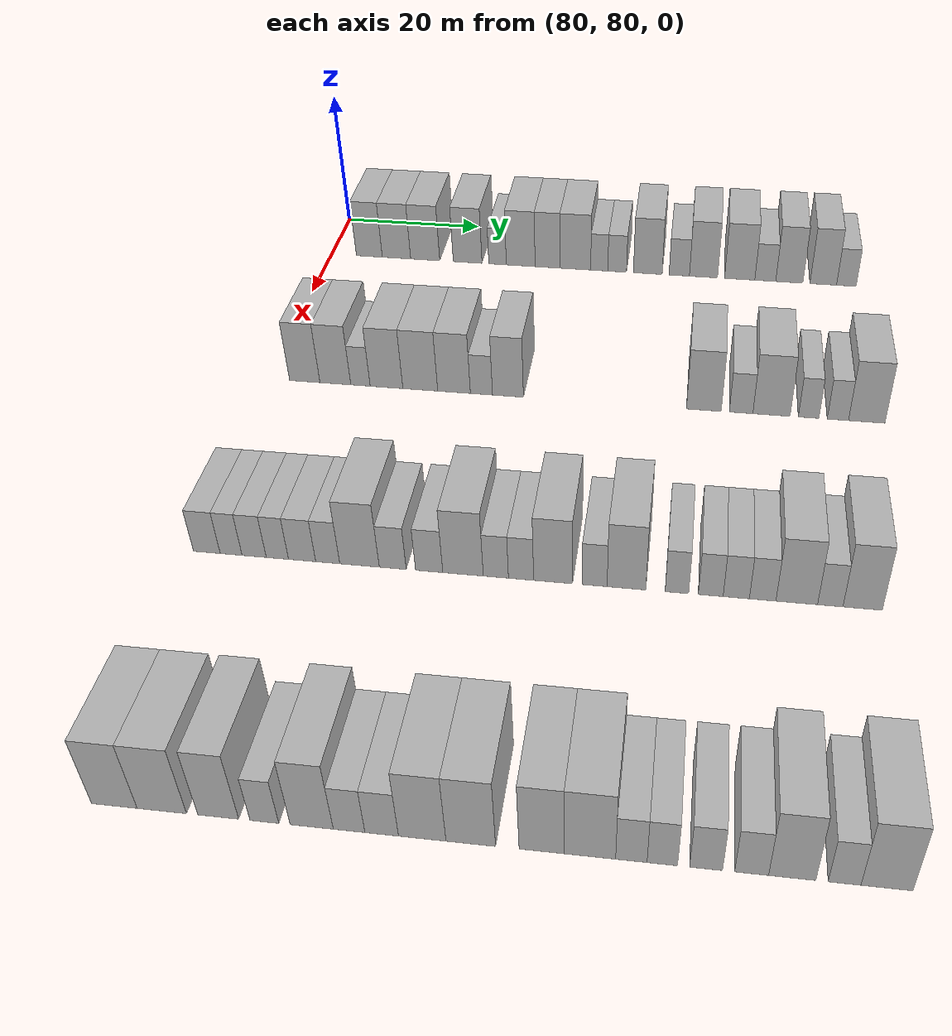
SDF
<sdf version="1.6">
 <world name="default">
  <model name="building_607">
   <static>1</static>
   <pose>85.0000 85.5541 0 0.000000 0.000000 0.000000</pose>
   <link name="link">
    <pose>0 0 4.50 0 0 0</pose>
    <collision name="collision"><geometry><box><size>10.0000 3.8704 9.0000</size></box></geometry></collision>
    <visual name="visual">
     <cast_shadows>0</cast_shadows>
     <geometry><box><size>10.0000 3.8704 9.0000</size></box></geometry>
     <material>
      <script>
       <uri>model://HANNAS_wall/materials/scripts</uri>
       <uri>model://HANNAS_wall/materials/textures</uri>
       <name>vrc/HANNAS_wall</name>
      </script>
     </material>
    </visual>
   </link>
  </model>
  <model name="building_608">
   <static>1</static>
   <pose>85.0000 89.6029 0 0.000000 0.000000 0.000000</pose>
   <link name="link">
    <pose>0 0 4.50 0 0 0</pose>
    <collision name="collision"><geometry><box><size>10.0000 4.2272 9.0000</size></box></geometry></collision>
    <visual name="visual">
     <cast_shadows>0</cast_shadows>
     <geometry><box><size>10.0000 4.2272 9.0000</size></box></geometry>
     <material>
      <script>
       <uri>model://HANNAS_wall/materials/scripts</uri>
       <uri>model://HANNAS_wall/materials/textures</uri>
       <name>vrc/HANNAS_wall</name>
      </script>
     </material>
    </visual>
   </link>
  </model>
  <model name="building_609">
   <static>1</static>
   <pose>85.0000 93.8718 0 0.000000 0.000000 0.000000</pose>
   <link name="link">
    <pose>0 0 4.50 0 0 0</pose>
    <collision name="collision"><geometry><box><size>10.0000 4.3107 9.0000</size></box></geometry></collision>
    <visual name="visual">
     <cast_shadows>0</cast_shadows>
     <geometry><box><size>10.0000 4.3107 9.0000</size></box></geometry>
     <material>
      <script>
       <uri>model://HANNAS_wall/materials/scripts</uri>
       <uri>model://HANNAS_wall/materials/textures</uri>
       <name>vrc/HANNAS_wall</name>
      </script>
     </material>
    </visual>
   </link>
  </model>
  <model name="building_610">
   <static>1</static>
   <pose>85.0000 100.1409 0 0.000000 0.000000 0.000000</pose>
   <link name="link">
    <pose>0 0 4.50 0 0 0</pose>
    <collision name="collision"><geometry><box><size>10.0000 4.2274 9.0000</size></box></geometry></collision>
    <visual name="visual">
     <cast_shadows>0</cast_shadows>
     <geometry><box><size>10.0000 4.2274 9.0000</size></box></geometry>
     <material>
      <script>
       <uri>model://HANNAS_wall/materials/scripts</uri>
       <uri>model://HANNAS_wall/materials/textures</uri>
       <name>vrc/HANNAS_wall</name>
      </script>
     </material>
    </visual>
   </link>
  </model>
  <model name="building_611">
   <static>1</static>
   <pose>85.0000 104.5401 0 0.000000 0.000000 0.000000</pose>
   <link name="link">
    <pose>0 0 3.00 0 0 0</pose>
    <collision name="collision"><geometry><box><size>10.0000 2.5710 6.0000</size></box></geometry></collision>
    <visual name="visual">
     <cast_shadows>0</cast_shadows>
     <geometry><box><size>10.0000 2.5710 6.0000</size></box></geometry>
     <material>
      <script>
       <uri>model://HANNAS_wall/materials/scripts</uri>
       <uri>model://HANNAS_wall/materials/textures</uri>
       <name>vrc/HANNAS_wall</name>
      </script>
     </material>
    </visual>
   </link>
  </model>
  <model name="building_612">
   <static>1</static>
   <pose>85.0000 107.9286 0 0.000000 0.000000 0.000000</pose>
   <link name="link">
    <pose>0 0 4.50 0 0 0</pose>
    <collision name="collision"><geometry><box><size>10.0000 4.2059 9.0000</size></box></geometry></collision>
    <visual name="visual">
     <cast_shadows>0</cast_shadows>
     <geometry><box><size>10.0000 4.2059 9.0000</size></box></geometry>
     <material>
      <script>
       <uri>model://HANNAS_wall/materials/scripts</uri>
       <uri>model://HANNAS_wall/materials/textures</uri>
       <name>vrc/HANNAS_wall</name>
      </script>
     </material>
    </visual>
   </link>
  </model>
  <model name="building_613">
   <static>1</static>
   <pose>85.0000 111.8455 0 0.000000 0.000000 0.000000</pose>
   <link name="link">
    <pose>0 0 4.50 0 0 0</pose>
    <collision name="collision"><geometry><box><size>10.0000 3.6279 9.0000</size></box></geometry></collision>
    <visual name="visual">
     <cast_shadows>0</cast_shadows>
     <geometry><box><size>10.0000 3.6279 9.0000</size></box></geometry>
     <material>
      <script>
       <uri>model://HANNAS_wall/materials/scripts</uri>
       <uri>model://HANNAS_wall/materials/textures</uri>
       <name>vrc/HANNAS_wall</name>
      </script>
     </material>
    </visual>
   </link>
  </model>
  <model name="building_614">
   <static>1</static>
   <pose>85.0000 115.8814 0 0.000000 0.000000 0.000000</pose>
   <link name="link">
    <pose>0 0 4.50 0 0 0</pose>
    <collision name="collision"><geometry><box><size>10.0000 4.4439 9.0000</size></box></geometry></collision>
    <visual name="visual">
     <cast_shadows>0</cast_shadows>
     <geometry><box><size>10.0000 4.4439 9.0000</size></box></geometry>
     <material>
      <script>
       <uri>model://HANNAS_wall/materials/scripts</uri>
       <uri>model://HANNAS_wall/materials/textures</uri>
       <name>vrc/HANNAS_wall</name>
      </script>
     </material>
    </visual>
   </link>
  </model>
  <model name="building_615">
   <static>1</static>
   <pose>85.0000 119.3385 0 0.000000 0.000000 0.000000</pose>
   <link name="link">
    <pose>0 0 3.00 0 0 0</pose>
    <collision name="collision"><geometry><box><size>10.0000 2.4704 6.0000</size></box></geometry></collision>
    <visual name="visual">
     <cast_shadows>0</cast_shadows>
     <geometry><box><size>10.0000 2.4704 6.0000</size></box></geometry>
     <material>
      <script>
       <uri>model://HANNAS_wall/materials/scripts</uri>
       <uri>model://HANNAS_wall/materials/textures</uri>
       <name>vrc/HANNAS_wall</name>
      </script>
     </material>
    </visual>
   </link>
  </model>
  <model name="building_616">
   <static>1</static>
   <pose>85.0000 121.9145 0 0.000000 0.000000 0.000000</pose>
   <link name="link">
    <pose>0 0 3.00 0 0 0</pose>
    <collision name="collision"><geometry><box><size>10.0000 2.6816 6.0000</size></box></geometry></collision>
    <visual name="visual">
     <cast_shadows>0</cast_shadows>
     <geometry><box><size>10.0000 2.6816 6.0000</size></box></geometry>
     <material>
      <script>
       <uri>model://HANNAS_wall/materials/scripts</uri>
       <uri>model://HANNAS_wall/materials/textures</uri>
       <name>vrc/HANNAS_wall</name>
      </script>
     </material>
    </visual>
   </link>
  </model>
  <model name="building_617">
   <static>1</static>
   <pose>85.0000 126.3104 0 0.000000 0.000000 0.000000</pose>
   <link name="link">
    <pose>0 0 4.50 0 0 0</pose>
    <collision name="collision"><geometry><box><size>10.0000 4.1101 9.0000</size></box></geometry></collision>
    <visual name="visual">
     <cast_shadows>0</cast_shadows>
     <geometry><box><size>10.0000 4.1101 9.0000</size></box></geometry>
     <material>
      <script>
       <uri>model://HANNAS_wall/materials/scripts</uri>
       <uri>model://HANNAS_wall/materials/textures</uri>
       <name>vrc/HANNAS_wall</name>
      </script>
     </material>
    </visual>
   </link>
  </model>
  <model name="building_618">
   <static>1</static>
   <pose>85.0000 130.8107 0 0.000000 0.000000 0.000000</pose>
   <link name="link">
    <pose>0 0 3.00 0 0 0</pose>
    <collision name="collision"><geometry><box><size>10.0000 2.8905 6.0000</size></box></geometry></collision>
    <visual name="visual">
     <cast_shadows>0</cast_shadows>
     <geometry><box><size>10.0000 2.8905 6.0000</size></box></geometry>
     <material>
      <script>
       <uri>model://HANNAS_wall/materials/scripts</uri>
       <uri>model://HANNAS_wall/materials/textures</uri>
       <name>vrc/HANNAS_wall</name>
      </script>
     </material>
    </visual>
   </link>
  </model>
  <model name="building_619">
   <static>1</static>
   <pose>85.0000 134.2525 0 0.000000 0.000000 0.000000</pose>
   <link name="link">
    <pose>0 0 4.50 0 0 0</pose>
    <collision name="collision"><geometry><box><size>10.0000 3.9931 9.0000</size></box></geometry></collision>
    <visual name="visual">
     <cast_shadows>0</cast_shadows>
     <geometry><box><size>10.0000 3.9931 9.0000</size></box></geometry>
     <material>
      <script>
       <uri>model://HANNAS_wall/materials/scripts</uri>
       <uri>model://HANNAS_wall/materials/textures</uri>
       <name>vrc/HANNAS_wall</name>
      </script>
     </material>
    </visual>
   </link>
  </model>
  <model name="building_620">
   <static>1</static>
   <pose>85.0000 139.3869 0 0.000000 0.000000 0.000000</pose>
   <link name="link">
    <pose>0 0 4.50 0 0 0</pose>
    <collision name="collision"><geometry><box><size>10.0000 4.2758 9.0000</size></box></geometry></collision>
    <visual name="visual">
     <cast_shadows>0</cast_shadows>
     <geometry><box><size>10.0000 4.2758 9.0000</size></box></geometry>
     <material>
      <script>
       <uri>model://HANNAS_wall/materials/scripts</uri>
       <uri>model://HANNAS_wall/materials/textures</uri>
       <name>vrc/HANNAS_wall</name>
      </script>
     </material>
    </visual>
   </link>
  </model>
  <model name="building_621">
   <static>1</static>
   <pose>85.0000 142.9996 0 0.000000 0.000000 0.000000</pose>
   <link name="link">
    <pose>0 0 3.00 0 0 0</pose>
    <collision name="collision"><geometry><box><size>10.0000 2.9495 6.0000</size></box></geometry></collision>
    <visual name="visual">
     <cast_shadows>0</cast_shadows>
     <geometry><box><size>10.0000 2.9495 6.0000</size></box></geometry>
     <material>
      <script>
       <uri>model://HANNAS_wall/materials/scripts</uri>
       <uri>model://HANNAS_wall/materials/textures</uri>
       <name>vrc/HANNAS_wall</name>
      </script>
     </material>
    </visual>
   </link>
  </model>
  <model name="building_622">
   <static>1</static>
   <pose>85.0000 146.3707 0 0.000000 0.000000 0.000000</pose>
   <link name="link">
    <pose>0 0 4.50 0 0 0</pose>
    <collision name="collision"><geometry><box><size>10.0000 3.7928 9.0000</size></box></geometry></collision>
    <visual name="visual">
     <cast_shadows>0</cast_shadows>
     <geometry><box><size>10.0000 3.7928 9.0000</size></box></geometry>
     <material>
      <script>
       <uri>model://HANNAS_wall/materials/scripts</uri>
       <uri>model://HANNAS_wall/materials/textures</uri>
       <name>vrc/HANNAS_wall</name>
      </script>
     </material>
    </visual>
   </link>
  </model>
  <model name="building_623">
   <static>1</static>
   <pose>85.0000 151.1259 0 0.000000 0.000000 0.000000</pose>
   <link name="link">
    <pose>0 0 4.50 0 0 0</pose>
    <collision name="collision"><geometry><box><size>10.0000 3.7176 9.0000</size></box></geometry></collision>
    <visual name="visual">
     <cast_shadows>0</cast_shadows>
     <geometry><box><size>10.0000 3.7176 9.0000</size></box></geometry>
     <material>
      <script>
       <uri>model://HANNAS_wall/materials/scripts</uri>
       <uri>model://HANNAS_wall/materials/textures</uri>
       <name>vrc/HANNAS_wall</name>
      </script>
     </material>
    </visual>
   </link>
  </model>
  <model name="building_624">
   <static>1</static>
   <pose>85.0000 154.3446 0 0.000000 0.000000 0.000000</pose>
   <link name="link">
    <pose>0 0 3.00 0 0 0</pose>
    <collision name="collision"><geometry><box><size>10.0000 2.7198 6.0000</size></box></geometry></collision>
    <visual name="visual">
     <cast_shadows>0</cast_shadows>
     <geometry><box><size>10.0000 2.7198 6.0000</size></box></geometry>
     <material>
      <script>
       <uri>model://HANNAS_wall/materials/scripts</uri>
       <uri>model://HANNAS_wall/materials/textures</uri>
       <name>vrc/HANNAS_wall</name>
      </script>
     </material>
    </visual>
   </link>
  </model>
  <model name="building_825">
   <static>1</static>
   <pose>115.0000 84.7533 0 0.000000 0.000000 0.000000</pose>
   <link name="link">
    <pose>0 0 4.50 0 0 0</pose>
    <collision name="collision"><geometry><box><size>10.0000 3.9340 9.0000</size></box></geometry></collision>
    <visual name="visual">
     <cast_shadows>0</cast_shadows>
     <geometry><box><size>10.0000 3.9340 9.0000</size></box></geometry>
     <material>
      <script>
       <uri>model://HANNAS_wall/materials/scripts</uri>
       <uri>model://HANNAS_wall/materials/textures</uri>
       <name>vrc/HANNAS_wall</name>
      </script>
     </material>
    </visual>
   </link>
  </model>
  <model name="building_826">
   <static>1</static>
   <pose>115.0000 88.7119 0 0.000000 0.000000 0.000000</pose>
   <link name="link">
    <pose>0 0 4.50 0 0 0</pose>
    <collision name="collision"><geometry><box><size>10.0000 3.9833 9.0000</size></box></geometry></collision>
    <visual name="visual">
     <cast_shadows>0</cast_shadows>
     <geometry><box><size>10.0000 3.9833 9.0000</size></box></geometry>
     <material>
      <script>
       <uri>model://HANNAS_wall/materials/scripts</uri>
       <uri>model://HANNAS_wall/materials/textures</uri>
       <name>vrc/HANNAS_wall</name>
      </script>
     </material>
    </visual>
   </link>
  </model>
  <model name="building_827">
   <static>1</static>
   <pose>115.0000 91.9536 0 0.000000 0.000000 0.000000</pose>
   <link name="link">
    <pose>0 0 3.00 0 0 0</pose>
    <collision name="collision"><geometry><box><size>10.0000 2.5001 6.0000</size></box></geometry></collision>
    <visual name="visual">
     <cast_shadows>0</cast_shadows>
     <geometry><box><size>10.0000 2.5001 6.0000</size></box></geometry>
     <material>
      <script>
       <uri>model://HANNAS_wall/materials/scripts</uri>
       <uri>model://HANNAS_wall/materials/textures</uri>
       <name>vrc/HANNAS_wall</name>
      </script>
     </material>
    </visual>
   </link>
  </model>
  <model name="building_828">
   <static>1</static>
   <pose>115.0000 95.3007 0 0.000000 0.000000 0.000000</pose>
   <link name="link">
    <pose>0 0 4.50 0 0 0</pose>
    <collision name="collision"><geometry><box><size>10.0000 4.1941 9.0000</size></box></geometry></collision>
    <visual name="visual">
     <cast_shadows>0</cast_shadows>
     <geometry><box><size>10.0000 4.1941 9.0000</size></box></geometry>
     <material>
      <script>
       <uri>model://HANNAS_wall/materials/scripts</uri>
       <uri>model://HANNAS_wall/materials/textures</uri>
       <name>vrc/HANNAS_wall</name>
      </script>
     </material>
    </visual>
   </link>
  </model>
  <model name="building_829">
   <static>1</static>
   <pose>115.0000 99.6219 0 0.000000 0.000000 0.000000</pose>
   <link name="link">
    <pose>0 0 4.50 0 0 0</pose>
    <collision name="collision"><geometry><box><size>10.0000 4.4481 9.0000</size></box></geometry></collision>
    <visual name="visual">
     <cast_shadows>0</cast_shadows>
     <geometry><box><size>10.0000 4.4481 9.0000</size></box></geometry>
     <material>
      <script>
       <uri>model://HANNAS_wall/materials/scripts</uri>
       <uri>model://HANNAS_wall/materials/textures</uri>
       <name>vrc/HANNAS_wall</name>
      </script>
     </material>
    </visual>
   </link>
  </model>
  <model name="building_830">
   <static>1</static>
   <pose>115.0000 103.9200 0 0.000000 0.000000 0.000000</pose>
   <link name="link">
    <pose>0 0 4.50 0 0 0</pose>
    <collision name="collision"><geometry><box><size>10.0000 4.1481 9.0000</size></box></geometry></collision>
    <visual name="visual">
     <cast_shadows>0</cast_shadows>
     <geometry><box><size>10.0000 4.1481 9.0000</size></box></geometry>
     <material>
      <script>
       <uri>model://HANNAS_wall/materials/scripts</uri>
       <uri>model://HANNAS_wall/materials/textures</uri>
       <name>vrc/HANNAS_wall</name>
      </script>
     </material>
    </visual>
   </link>
  </model>
  <model name="building_831">
   <static>1</static>
   <pose>115.0000 107.3923 0 0.000000 0.000000 0.000000</pose>
   <link name="link">
    <pose>0 0 3.00 0 0 0</pose>
    <collision name="collision"><geometry><box><size>10.0000 2.7965 6.0000</size></box></geometry></collision>
    <visual name="visual">
     <cast_shadows>0</cast_shadows>
     <geometry><box><size>10.0000 2.7965 6.0000</size></box></geometry>
     <material>
      <script>
       <uri>model://HANNAS_wall/materials/scripts</uri>
       <uri>model://HANNAS_wall/materials/textures</uri>
       <name>vrc/HANNAS_wall</name>
      </script>
     </material>
    </visual>
   </link>
  </model>
  <model name="building_832">
   <static>1</static>
   <pose>115.0000 110.7379 0 0.000000 0.000000 0.000000</pose>
   <link name="link">
    <pose>0 0 4.50 0 0 0</pose>
    <collision name="collision"><geometry><box><size>10.0000 3.8947 9.0000</size></box></geometry></collision>
    <visual name="visual">
     <cast_shadows>0</cast_shadows>
     <geometry><box><size>10.0000 3.8947 9.0000</size></box></geometry>
     <material>
      <script>
       <uri>model://HANNAS_wall/materials/scripts</uri>
       <uri>model://HANNAS_wall/materials/textures</uri>
       <name>vrc/HANNAS_wall</name>
      </script>
     </material>
    </visual>
   </link>
  </model>
  <model name="building_833">
   <static>1</static>
   <pose>115.0000 135.0343 0 0.000000 0.000000 0.000000</pose>
   <link name="link">
    <pose>0 0 4.50 0 0 0</pose>
    <collision name="collision"><geometry><box><size>10.0000 4.2327 9.0000</size></box></geometry></collision>
    <visual name="visual">
     <cast_shadows>0</cast_shadows>
     <geometry><box><size>10.0000 4.2327 9.0000</size></box></geometry>
     <material>
      <script>
       <uri>model://HANNAS_wall/materials/scripts</uri>
       <uri>model://HANNAS_wall/materials/textures</uri>
       <name>vrc/HANNAS_wall</name>
      </script>
     </material>
    </visual>
   </link>
  </model>
  <model name="building_834">
   <static>1</static>
   <pose>115.0000 139.5814 0 0.000000 0.000000 0.000000</pose>
   <link name="link">
    <pose>0 0 3.00 0 0 0</pose>
    <collision name="collision"><geometry><box><size>10.0000 2.8616 6.0000</size></box></geometry></collision>
    <visual name="visual">
     <cast_shadows>0</cast_shadows>
     <geometry><box><size>10.0000 2.8616 6.0000</size></box></geometry>
     <material>
      <script>
       <uri>model://HANNAS_wall/materials/scripts</uri>
       <uri>model://HANNAS_wall/materials/textures</uri>
       <name>vrc/HANNAS_wall</name>
      </script>
     </material>
    </visual>
   </link>
  </model>
  <model name="building_835">
   <static>1</static>
   <pose>115.0000 143.2601 0 0.000000 0.000000 0.000000</pose>
   <link name="link">
    <pose>0 0 4.50 0 0 0</pose>
    <collision name="collision"><geometry><box><size>10.0000 4.4958 9.0000</size></box></geometry></collision>
    <visual name="visual">
     <cast_shadows>0</cast_shadows>
     <geometry><box><size>10.0000 4.4958 9.0000</size></box></geometry>
     <material>
      <script>
       <uri>model://HANNAS_wall/materials/scripts</uri>
       <uri>model://HANNAS_wall/materials/textures</uri>
       <name>vrc/HANNAS_wall</name>
      </script>
     </material>
    </visual>
   </link>
  </model>
  <model name="building_836">
   <static>1</static>
   <pose>115.0000 147.7472 0 0.000000 0.000000 0.000000</pose>
   <link name="link">
    <pose>0 0 3.00 0 0 0</pose>
    <collision name="collision"><geometry><box><size>10.0000 2.4783 6.0000</size></box></geometry></collision>
    <visual name="visual">
     <cast_shadows>0</cast_shadows>
     <geometry><box><size>10.0000 2.4783 6.0000</size></box></geometry>
     <material>
      <script>
       <uri>model://HANNAS_wall/materials/scripts</uri>
       <uri>model://HANNAS_wall/materials/textures</uri>
       <name>vrc/HANNAS_wall</name>
      </script>
     </material>
    </visual>
   </link>
  </model>
  <model name="building_837">
   <static>1</static>
   <pose>115.0000 151.2579 0 0.000000 0.000000 0.000000</pose>
   <link name="link">
    <pose>0 0 3.00 0 0 0</pose>
    <collision name="collision"><geometry><box><size>10.0000 2.5432 6.0000</size></box></geometry></collision>
    <visual name="visual">
     <cast_shadows>0</cast_shadows>
     <geometry><box><size>10.0000 2.5432 6.0000</size></box></geometry>
     <material>
      <script>
       <uri>model://HANNAS_wall/materials/scripts</uri>
       <uri>model://HANNAS_wall/materials/textures</uri>
       <name>vrc/HANNAS_wall</name>
      </script>
     </material>
    </visual>
   </link>
  </model>
  <model name="building_838">
   <static>1</static>
   <pose>115.0000 154.7081 0 0.000000 0.000000 0.000000</pose>
   <link name="link">
    <pose>0 0 4.50 0 0 0</pose>
    <collision name="collision"><geometry><box><size>10.0000 4.3573 9.0000</size></box></geometry></collision>
    <visual name="visual">
     <cast_shadows>0</cast_shadows>
     <geometry><box><size>10.0000 4.3573 9.0000</size></box></geometry>
     <material>
      <script>
       <uri>model://HANNAS_wall/materials/scripts</uri>
       <uri>model://HANNAS_wall/materials/textures</uri>
       <name>vrc/HANNAS_wall</name>
      </script>
     </material>
    </visual>
   </link>
  </model>
  <model name="building_1045">
   <static>1</static>
   <pose>145.0000 82.9110 0 0.000000 0.000000 0.000000</pose>
   <link name="link">
    <pose>0 0 3.00 0 0 0</pose>
    <collision name="collision"><geometry><box><size>10.0000 2.9474 6.0000</size></box></geometry></collision>
    <visual name="visual">
     <cast_shadows>0</cast_shadows>
     <geometry><box><size>10.0000 2.9474 6.0000</size></box></geometry>
     <material>
      <script>
       <uri>model://HANNAS_wall/materials/scripts</uri>
       <uri>model://HANNAS_wall/materials/textures</uri>
       <name>vrc/HANNAS_wall</name>
      </script>
     </material>
    </visual>
   </link>
  </model>
  <model name="building_1046">
   <static>1</static>
   <pose>145.0000 85.5894 0 0.000000 0.000000 0.000000</pose>
   <link name="link">
    <pose>0 0 3.00 0 0 0</pose>
    <collision name="collision"><geometry><box><size>10.0000 2.4094 6.0000</size></box></geometry></collision>
    <visual name="visual">
     <cast_shadows>0</cast_shadows>
     <geometry><box><size>10.0000 2.4094 6.0000</size></box></geometry>
     <material>
      <script>
       <uri>model://HANNAS_wall/materials/scripts</uri>
       <uri>model://HANNAS_wall/materials/textures</uri>
       <name>vrc/HANNAS_wall</name>
      </script>
     </material>
    </visual>
   </link>
  </model>
  <model name="building_1047">
   <static>1</static>
   <pose>145.0000 88.1170 0 0.000000 0.000000 0.000000</pose>
   <link name="link">
    <pose>0 0 3.00 0 0 0</pose>
    <collision name="collision"><geometry><box><size>10.0000 2.6458 6.0000</size></box></geometry></collision>
    <visual name="visual">
     <cast_shadows>0</cast_shadows>
     <geometry><box><size>10.0000 2.6458 6.0000</size></box></geometry>
     <material>
      <script>
       <uri>model://HANNAS_wall/materials/scripts</uri>
       <uri>model://HANNAS_wall/materials/textures</uri>
       <name>vrc/HANNAS_wall</name>
      </script>
     </material>
    </visual>
   </link>
  </model>
  <model name="building_1048">
   <static>1</static>
   <pose>145.0000 90.6573 0 0.000000 0.000000 0.000000</pose>
   <link name="link">
    <pose>0 0 3.00 0 0 0</pose>
    <collision name="collision"><geometry><box><size>10.0000 2.4349 6.0000</size></box></geometry></collision>
    <visual name="visual">
     <cast_shadows>0</cast_shadows>
     <geometry><box><size>10.0000 2.4349 6.0000</size></box></geometry>
     <material>
      <script>
       <uri>model://HANNAS_wall/materials/scripts</uri>
       <uri>model://HANNAS_wall/materials/textures</uri>
       <name>vrc/HANNAS_wall</name>
      </script>
     </material>
    </visual>
   </link>
  </model>
  <model name="building_1049">
   <static>1</static>
   <pose>145.0000 93.3576 0 0.000000 0.000000 0.000000</pose>
   <link name="link">
    <pose>0 0 3.00 0 0 0</pose>
    <collision name="collision"><geometry><box><size>10.0000 2.9656 6.0000</size></box></geometry></collision>
    <visual name="visual">
     <cast_shadows>0</cast_shadows>
     <geometry><box><size>10.0000 2.9656 6.0000</size></box></geometry>
     <material>
      <script>
       <uri>model://HANNAS_wall/materials/scripts</uri>
       <uri>model://HANNAS_wall/materials/textures</uri>
       <name>vrc/HANNAS_wall</name>
      </script>
     </material>
    </visual>
   </link>
  </model>
  <model name="building_1050">
   <static>1</static>
   <pose>145.0000 96.1454 0 0.000000 0.000000 0.000000</pose>
   <link name="link">
    <pose>0 0 3.00 0 0 0</pose>
    <collision name="collision"><geometry><box><size>10.0000 2.6100 6.0000</size></box></geometry></collision>
    <visual name="visual">
     <cast_shadows>0</cast_shadows>
     <geometry><box><size>10.0000 2.6100 6.0000</size></box></geometry>
     <material>
      <script>
       <uri>model://HANNAS_wall/materials/scripts</uri>
       <uri>model://HANNAS_wall/materials/textures</uri>
       <name>vrc/HANNAS_wall</name>
      </script>
     </material>
    </visual>
   </link>
  </model>
  <model name="building_1051">
   <static>1</static>
   <pose>145.0000 99.5830 0 0.000000 0.000000 0.000000</pose>
   <link name="link">
    <pose>0 0 4.50 0 0 0</pose>
    <collision name="collision"><geometry><box><size>10.0000 4.2653 9.0000</size></box></geometry></collision>
    <visual name="visual">
     <cast_shadows>0</cast_shadows>
     <geometry><box><size>10.0000 4.2653 9.0000</size></box></geometry>
     <material>
      <script>
       <uri>model://HANNAS_wall/materials/scripts</uri>
       <uri>model://HANNAS_wall/materials/textures</uri>
       <name>vrc/HANNAS_wall</name>
      </script>
     </material>
    </visual>
   </link>
  </model>
  <model name="building_1052">
   <static>1</static>
   <pose>145.0000 103.1614 0 0.000000 0.000000 0.000000</pose>
   <link name="link">
    <pose>0 0 3.00 0 0 0</pose>
    <collision name="collision"><geometry><box><size>10.0000 2.8915 6.0000</size></box></geometry></collision>
    <visual name="visual">
     <cast_shadows>0</cast_shadows>
     <geometry><box><size>10.0000 2.8915 6.0000</size></box></geometry>
     <material>
      <script>
       <uri>model://HANNAS_wall/materials/scripts</uri>
       <uri>model://HANNAS_wall/materials/textures</uri>
       <name>vrc/HANNAS_wall</name>
      </script>
     </material>
    </visual>
   </link>
  </model>
  <model name="building_1053">
   <static>1</static>
   <pose>145.0000 107.0593 0 0.000000 0.000000 0.000000</pose>
   <link name="link">
    <pose>0 0 3.00 0 0 0</pose>
    <collision name="collision"><geometry><box><size>10.0000 2.9044 6.0000</size></box></geometry></collision>
    <visual name="visual">
     <cast_shadows>0</cast_shadows>
     <geometry><box><size>10.0000 2.9044 6.0000</size></box></geometry>
     <material>
      <script>
       <uri>model://HANNAS_wall/materials/scripts</uri>
       <uri>model://HANNAS_wall/materials/textures</uri>
       <name>vrc/HANNAS_wall</name>
      </script>
     </material>
    </visual>
   </link>
  </model>
  <model name="building_1054">
   <static>1</static>
   <pose>145.0000 110.6607 0 0.000000 0.000000 0.000000</pose>
   <link name="link">
    <pose>0 0 4.50 0 0 0</pose>
    <collision name="collision"><geometry><box><size>10.0000 4.2985 9.0000</size></box></geometry></collision>
    <visual name="visual">
     <cast_shadows>0</cast_shadows>
     <geometry><box><size>10.0000 4.2985 9.0000</size></box></geometry>
     <material>
      <script>
       <uri>model://HANNAS_wall/materials/scripts</uri>
       <uri>model://HANNAS_wall/materials/textures</uri>
       <name>vrc/HANNAS_wall</name>
      </script>
     </material>
    </visual>
   </link>
  </model>
  <model name="building_1055">
   <static>1</static>
   <pose>145.0000 114.1392 0 0.000000 0.000000 0.000000</pose>
   <link name="link">
    <pose>0 0 3.00 0 0 0</pose>
    <collision name="collision"><geometry><box><size>10.0000 2.6585 6.0000</size></box></geometry></collision>
    <visual name="visual">
     <cast_shadows>0</cast_shadows>
     <geometry><box><size>10.0000 2.6585 6.0000</size></box></geometry>
     <material>
      <script>
       <uri>model://HANNAS_wall/materials/scripts</uri>
       <uri>model://HANNAS_wall/materials/textures</uri>
       <name>vrc/HANNAS_wall</name>
      </script>
     </material>
    </visual>
   </link>
  </model>
  <model name="building_1056">
   <static>1</static>
   <pose>145.0000 116.7955 0 0.000000 0.000000 0.000000</pose>
   <link name="link">
    <pose>0 0 3.00 0 0 0</pose>
    <collision name="collision"><geometry><box><size>10.0000 2.6541 6.0000</size></box></geometry></collision>
    <visual name="visual">
     <cast_shadows>0</cast_shadows>
     <geometry><box><size>10.0000 2.6541 6.0000</size></box></geometry>
     <material>
      <script>
       <uri>model://HANNAS_wall/materials/scripts</uri>
       <uri>model://HANNAS_wall/materials/textures</uri>
       <name>vrc/HANNAS_wall</name>
      </script>
     </material>
    </visual>
   </link>
  </model>
  <model name="building_1057">
   <static>1</static>
   <pose>145.0000 120.1572 0 0.000000 0.000000 0.000000</pose>
   <link name="link">
    <pose>0 0 4.50 0 0 0</pose>
    <collision name="collision"><geometry><box><size>10.0000 4.0692 9.0000</size></box></geometry></collision>
    <visual name="visual">
     <cast_shadows>0</cast_shadows>
     <geometry><box><size>10.0000 4.0692 9.0000</size></box></geometry>
     <material>
      <script>
       <uri>model://HANNAS_wall/materials/scripts</uri>
       <uri>model://HANNAS_wall/materials/textures</uri>
       <name>vrc/HANNAS_wall</name>
      </script>
     </material>
    </visual>
   </link>
  </model>
  <model name="building_1058">
   <static>1</static>
   <pose>145.0000 124.4927 0 0.000000 0.000000 0.000000</pose>
   <link name="link">
    <pose>0 0 3.00 0 0 0</pose>
    <collision name="collision"><geometry><box><size>10.0000 2.6017 6.0000</size></box></geometry></collision>
    <visual name="visual">
     <cast_shadows>0</cast_shadows>
     <geometry><box><size>10.0000 2.6017 6.0000</size></box></geometry>
     <material>
      <script>
       <uri>model://HANNAS_wall/materials/scripts</uri>
       <uri>model://HANNAS_wall/materials/textures</uri>
       <name>vrc/HANNAS_wall</name>
      </script>
     </material>
    </visual>
   </link>
  </model>
  <model name="building_1059">
   <static>1</static>
   <pose>145.0000 127.7981 0 0.000000 0.000000 0.000000</pose>
   <link name="link">
    <pose>0 0 4.50 0 0 0</pose>
    <collision name="collision"><geometry><box><size>10.0000 4.0091 9.0000</size></box></geometry></collision>
    <visual name="visual">
     <cast_shadows>0</cast_shadows>
     <geometry><box><size>10.0000 4.0091 9.0000</size></box></geometry>
     <material>
      <script>
       <uri>model://HANNAS_wall/materials/scripts</uri>
       <uri>model://HANNAS_wall/materials/textures</uri>
       <name>vrc/HANNAS_wall</name>
      </script>
     </material>
    </visual>
   </link>
  </model>
  <model name="building_1060">
   <static>1</static>
   <pose>145.0000 133.0062 0 0.000000 0.000000 0.000000</pose>
   <link name="link">
    <pose>0 0 3.00 0 0 0</pose>
    <collision name="collision"><geometry><box><size>10.0000 2.4073 6.0000</size></box></geometry></collision>
    <visual name="visual">
     <cast_shadows>0</cast_shadows>
     <geometry><box><size>10.0000 2.4073 6.0000</size></box></geometry>
     <material>
      <script>
       <uri>model://HANNAS_wall/materials/scripts</uri>
       <uri>model://HANNAS_wall/materials/textures</uri>
       <name>vrc/HANNAS_wall</name>
      </script>
     </material>
    </visual>
   </link>
  </model>
  <model name="building_1061">
   <static>1</static>
   <pose>145.0000 136.4761 0 0.000000 0.000000 0.000000</pose>
   <link name="link">
    <pose>0 0 3.00 0 0 0</pose>
    <collision name="collision"><geometry><box><size>10.0000 2.5326 6.0000</size></box></geometry></collision>
    <visual name="visual">
     <cast_shadows>0</cast_shadows>
     <geometry><box><size>10.0000 2.5326 6.0000</size></box></geometry>
     <material>
      <script>
       <uri>model://HANNAS_wall/materials/scripts</uri>
       <uri>model://HANNAS_wall/materials/textures</uri>
       <name>vrc/HANNAS_wall</name>
      </script>
     </material>
    </visual>
   </link>
  </model>
  <model name="building_1062">
   <static>1</static>
   <pose>145.0000 139.0807 0 0.000000 0.000000 0.000000</pose>
   <link name="link">
    <pose>0 0 3.00 0 0 0</pose>
    <collision name="collision"><geometry><box><size>10.0000 2.6765 6.0000</size></box></geometry></collision>
    <visual name="visual">
     <cast_shadows>0</cast_shadows>
     <geometry><box><size>10.0000 2.6765 6.0000</size></box></geometry>
     <material>
      <script>
       <uri>model://HANNAS_wall/materials/scripts</uri>
       <uri>model://HANNAS_wall/materials/textures</uri>
       <name>vrc/HANNAS_wall</name>
      </script>
     </material>
    </visual>
   </link>
  </model>
  <model name="building_1063">
   <static>1</static>
   <pose>145.0000 141.7650 0 0.000000 0.000000 0.000000</pose>
   <link name="link">
    <pose>0 0 3.00 0 0 0</pose>
    <collision name="collision"><geometry><box><size>10.0000 2.6920 6.0000</size></box></geometry></collision>
    <visual name="visual">
     <cast_shadows>0</cast_shadows>
     <geometry><box><size>10.0000 2.6920 6.0000</size></box></geometry>
     <material>
      <script>
       <uri>model://HANNAS_wall/materials/scripts</uri>
       <uri>model://HANNAS_wall/materials/textures</uri>
       <name>vrc/HANNAS_wall</name>
      </script>
     </material>
    </visual>
   </link>
  </model>
  <model name="building_1064">
   <static>1</static>
   <pose>145.0000 145.2157 0 0.000000 0.000000 0.000000</pose>
   <link name="link">
    <pose>0 0 4.50 0 0 0</pose>
    <collision name="collision"><geometry><box><size>10.0000 4.2094 9.0000</size></box></geometry></collision>
    <visual name="visual">
     <cast_shadows>0</cast_shadows>
     <geometry><box><size>10.0000 4.2094 9.0000</size></box></geometry>
     <material>
      <script>
       <uri>model://HANNAS_wall/materials/scripts</uri>
       <uri>model://HANNAS_wall/materials/textures</uri>
       <name>vrc/HANNAS_wall</name>
      </script>
     </material>
    </visual>
   </link>
  </model>
  <model name="building_1065">
   <static>1</static>
   <pose>145.0000 148.5965 0 0.000000 0.000000 0.000000</pose>
   <link name="link">
    <pose>0 0 3.00 0 0 0</pose>
    <collision name="collision"><geometry><box><size>10.0000 2.5523 6.0000</size></box></geometry></collision>
    <visual name="visual">
     <cast_shadows>0</cast_shadows>
     <geometry><box><size>10.0000 2.5523 6.0000</size></box></geometry>
     <material>
      <script>
       <uri>model://HANNAS_wall/materials/scripts</uri>
       <uri>model://HANNAS_wall/materials/textures</uri>
       <name>vrc/HANNAS_wall</name>
      </script>
     </material>
    </visual>
   </link>
  </model>
  <model name="building_1066">
   <static>1</static>
   <pose>145.0000 151.8395 0 0.000000 0.000000 0.000000</pose>
   <link name="link">
    <pose>0 0 4.50 0 0 0</pose>
    <collision name="collision"><geometry><box><size>10.0000 3.9337 9.0000</size></box></geometry></collision>
    <visual name="visual">
     <cast_shadows>0</cast_shadows>
     <geometry><box><size>10.0000 3.9337 9.0000</size></box></geometry>
     <material>
      <script>
       <uri>model://HANNAS_wall/materials/scripts</uri>
       <uri>model://HANNAS_wall/materials/textures</uri>
       <name>vrc/HANNAS_wall</name>
      </script>
     </material>
    </visual>
   </link>
  </model>
  <model name="building_1277">
   <static>1</static>
   <pose>175.0000 85.5897 0 0.000000 0.000000 0.000000</pose>
   <link name="link">
    <pose>0 0 4.50 0 0 0</pose>
    <collision name="collision"><geometry><box><size>10.0000 4.1152 9.0000</size></box></geometry></collision>
    <visual name="visual">
     <cast_shadows>0</cast_shadows>
     <geometry><box><size>10.0000 4.1152 9.0000</size></box></geometry>
     <material>
      <script>
       <uri>model://HANNAS_wall/materials/scripts</uri>
       <uri>model://HANNAS_wall/materials/textures</uri>
       <name>vrc/HANNAS_wall</name>
      </script>
     </material>
    </visual>
   </link>
  </model>
  <model name="building_1278">
   <static>1</static>
   <pose>175.0000 89.8645 0 0.000000 0.000000 0.000000</pose>
   <link name="link">
    <pose>0 0 4.50 0 0 0</pose>
    <collision name="collision"><geometry><box><size>10.0000 4.4342 9.0000</size></box></geometry></collision>
    <visual name="visual">
     <cast_shadows>0</cast_shadows>
     <geometry><box><size>10.0000 4.4342 9.0000</size></box></geometry>
     <material>
      <script>
       <uri>model://HANNAS_wall/materials/scripts</uri>
       <uri>model://HANNAS_wall/materials/textures</uri>
       <name>vrc/HANNAS_wall</name>
      </script>
     </material>
    </visual>
   </link>
  </model>
  <model name="building_1279">
   <static>1</static>
   <pose>175.0000 94.9024 0 0.000000 0.000000 0.000000</pose>
   <link name="link">
    <pose>0 0 4.50 0 0 0</pose>
    <collision name="collision"><geometry><box><size>10.0000 3.6417 9.0000</size></box></geometry></collision>
    <visual name="visual">
     <cast_shadows>0</cast_shadows>
     <geometry><box><size>10.0000 3.6417 9.0000</size></box></geometry>
     <material>
      <script>
       <uri>model://HANNAS_wall/materials/scripts</uri>
       <uri>model://HANNAS_wall/materials/textures</uri>
       <name>vrc/HANNAS_wall</name>
      </script>
     </material>
    </visual>
   </link>
  </model>
  <model name="building_1280">
   <static>1</static>
   <pose>175.0000 98.9946 0 0.000000 0.000000 0.000000</pose>
   <link name="link">
    <pose>0 0 3.00 0 0 0</pose>
    <collision name="collision"><geometry><box><size>10.0000 2.5426 6.0000</size></box></geometry></collision>
    <visual name="visual">
     <cast_shadows>0</cast_shadows>
     <geometry><box><size>10.0000 2.5426 6.0000</size></box></geometry>
     <material>
      <script>
       <uri>model://HANNAS_wall/materials/scripts</uri>
       <uri>model://HANNAS_wall/materials/textures</uri>
       <name>vrc/HANNAS_wall</name>
      </script>
     </material>
    </visual>
   </link>
  </model>
  <model name="building_1281">
   <static>1</static>
   <pose>175.0000 103.1557 0 0.000000 0.000000 0.000000</pose>
   <link name="link">
    <pose>0 0 4.50 0 0 0</pose>
    <collision name="collision"><geometry><box><size>10.0000 3.7796 9.0000</size></box></geometry></collision>
    <visual name="visual">
     <cast_shadows>0</cast_shadows>
     <geometry><box><size>10.0000 3.7796 9.0000</size></box></geometry>
     <material>
      <script>
       <uri>model://HANNAS_wall/materials/scripts</uri>
       <uri>model://HANNAS_wall/materials/textures</uri>
       <name>vrc/HANNAS_wall</name>
      </script>
     </material>
    </visual>
   </link>
  </model>
  <model name="building_1282">
   <static>1</static>
   <pose>175.0000 106.4248 0 0.000000 0.000000 0.000000</pose>
   <link name="link">
    <pose>0 0 3.00 0 0 0</pose>
    <collision name="collision"><geometry><box><size>10.0000 2.7585 6.0000</size></box></geometry></collision>
    <visual name="visual">
     <cast_shadows>0</cast_shadows>
     <geometry><box><size>10.0000 2.7585 6.0000</size></box></geometry>
     <material>
      <script>
       <uri>model://HANNAS_wall/materials/scripts</uri>
       <uri>model://HANNAS_wall/materials/textures</uri>
       <name>vrc/HANNAS_wall</name>
      </script>
     </material>
    </visual>
   </link>
  </model>
  <model name="building_1283">
   <static>1</static>
   <pose>175.0000 109.2579 0 0.000000 0.000000 0.000000</pose>
   <link name="link">
    <pose>0 0 3.00 0 0 0</pose>
    <collision name="collision"><geometry><box><size>10.0000 2.9078 6.0000</size></box></geometry></collision>
    <visual name="visual">
     <cast_shadows>0</cast_shadows>
     <geometry><box><size>10.0000 2.9078 6.0000</size></box></geometry>
     <material>
      <script>
       <uri>model://HANNAS_wall/materials/scripts</uri>
       <uri>model://HANNAS_wall/materials/textures</uri>
       <name>vrc/HANNAS_wall</name>
      </script>
     </material>
    </visual>
   </link>
  </model>
  <model name="building_1284">
   <static>1</static>
   <pose>175.0000 112.7557 0 0.000000 0.000000 0.000000</pose>
   <link name="link">
    <pose>0 0 4.50 0 0 0</pose>
    <collision name="collision"><geometry><box><size>10.0000 4.0877 9.0000</size></box></geometry></collision>
    <visual name="visual">
     <cast_shadows>0</cast_shadows>
     <geometry><box><size>10.0000 4.0877 9.0000</size></box></geometry>
     <material>
      <script>
       <uri>model://HANNAS_wall/materials/scripts</uri>
       <uri>model://HANNAS_wall/materials/textures</uri>
       <name>vrc/HANNAS_wall</name>
      </script>
     </material>
    </visual>
   </link>
  </model>
  <model name="building_1285">
   <static>1</static>
   <pose>175.0000 116.9215 0 0.000000 0.000000 0.000000</pose>
   <link name="link">
    <pose>0 0 4.50 0 0 0</pose>
    <collision name="collision"><geometry><box><size>10.0000 4.2440 9.0000</size></box></geometry></collision>
    <visual name="visual">
     <cast_shadows>0</cast_shadows>
     <geometry><box><size>10.0000 4.2440 9.0000</size></box></geometry>
     <material>
      <script>
       <uri>model://HANNAS_wall/materials/scripts</uri>
       <uri>model://HANNAS_wall/materials/textures</uri>
       <name>vrc/HANNAS_wall</name>
      </script>
     </material>
    </visual>
   </link>
  </model>
  <model name="building_1286">
   <static>1</static>
   <pose>175.0000 122.9544 0 0.000000 0.000000 0.000000</pose>
   <link name="link">
    <pose>0 0 4.50 0 0 0</pose>
    <collision name="collision"><geometry><box><size>10.0000 3.8218 9.0000</size></box></geometry></collision>
    <visual name="visual">
     <cast_shadows>0</cast_shadows>
     <geometry><box><size>10.0000 3.8218 9.0000</size></box></geometry>
     <material>
      <script>
       <uri>model://HANNAS_wall/materials/scripts</uri>
       <uri>model://HANNAS_wall/materials/textures</uri>
       <name>vrc/HANNAS_wall</name>
      </script>
     </material>
    </visual>
   </link>
  </model>
  <model name="building_1287">
   <static>1</static>
   <pose>175.0000 127.0184 0 0.000000 0.000000 0.000000</pose>
   <link name="link">
    <pose>0 0 4.50 0 0 0</pose>
    <collision name="collision"><geometry><box><size>10.0000 4.3062 9.0000</size></box></geometry></collision>
    <visual name="visual">
     <cast_shadows>0</cast_shadows>
     <geometry><box><size>10.0000 4.3062 9.0000</size></box></geometry>
     <material>
      <script>
       <uri>model://HANNAS_wall/materials/scripts</uri>
       <uri>model://HANNAS_wall/materials/textures</uri>
       <name>vrc/HANNAS_wall</name>
      </script>
     </material>
    </visual>
   </link>
  </model>
  <model name="building_1288">
   <static>1</static>
   <pose>175.0000 130.4831 0 0.000000 0.000000 0.000000</pose>
   <link name="link">
    <pose>0 0 3.00 0 0 0</pose>
    <collision name="collision"><geometry><box><size>10.0000 2.6232 6.0000</size></box></geometry></collision>
    <visual name="visual">
     <cast_shadows>0</cast_shadows>
     <geometry><box><size>10.0000 2.6232 6.0000</size></box></geometry>
     <material>
      <script>
       <uri>model://HANNAS_wall/materials/scripts</uri>
       <uri>model://HANNAS_wall/materials/textures</uri>
       <name>vrc/HANNAS_wall</name>
      </script>
     </material>
    </visual>
   </link>
  </model>
  <model name="building_1289">
   <static>1</static>
   <pose>175.0000 133.0590 0 0.000000 0.000000 0.000000</pose>
   <link name="link">
    <pose>0 0 3.00 0 0 0</pose>
    <collision name="collision"><geometry><box><size>10.0000 2.5285 6.0000</size></box></geometry></collision>
    <visual name="visual">
     <cast_shadows>0</cast_shadows>
     <geometry><box><size>10.0000 2.5285 6.0000</size></box></geometry>
     <material>
      <script>
       <uri>model://HANNAS_wall/materials/scripts</uri>
       <uri>model://HANNAS_wall/materials/textures</uri>
       <name>vrc/HANNAS_wall</name>
      </script>
     </material>
    </visual>
   </link>
  </model>
  <model name="building_1290">
   <static>1</static>
   <pose>175.0000 136.6822 0 0.000000 0.000000 0.000000</pose>
   <link name="link">
    <pose>0 0 3.00 0 0 0</pose>
    <collision name="collision"><geometry><box><size>10.0000 2.7178 6.0000</size></box></geometry></collision>
    <visual name="visual">
     <cast_shadows>0</cast_shadows>
     <geometry><box><size>10.0000 2.7178 6.0000</size></box></geometry>
     <material>
      <script>
       <uri>model://HANNAS_wall/materials/scripts</uri>
       <uri>model://HANNAS_wall/materials/textures</uri>
       <name>vrc/HANNAS_wall</name>
      </script>
     </material>
    </visual>
   </link>
  </model>
  <model name="building_1291">
   <static>1</static>
   <pose>175.0000 140.4312 0 0.000000 0.000000 0.000000</pose>
   <link name="link">
    <pose>0 0 3.00 0 0 0</pose>
    <collision name="collision"><geometry><box><size>10.0000 2.7802 6.0000</size></box></geometry></collision>
    <visual name="visual">
     <cast_shadows>0</cast_shadows>
     <geometry><box><size>10.0000 2.7802 6.0000</size></box></geometry>
     <material>
      <script>
       <uri>model://HANNAS_wall/materials/scripts</uri>
       <uri>model://HANNAS_wall/materials/textures</uri>
       <name>vrc/HANNAS_wall</name>
      </script>
     </material>
    </visual>
   </link>
  </model>
  <model name="building_1292">
   <static>1</static>
   <pose>175.0000 143.7471 0 0.000000 0.000000 0.000000</pose>
   <link name="link">
    <pose>0 0 4.50 0 0 0</pose>
    <collision name="collision"><geometry><box><size>10.0000 3.8517 9.0000</size></box></geometry></collision>
    <visual name="visual">
     <cast_shadows>0</cast_shadows>
     <geometry><box><size>10.0000 3.8517 9.0000</size></box></geometry>
     <material>
      <script>
       <uri>model://HANNAS_wall/materials/scripts</uri>
       <uri>model://HANNAS_wall/materials/textures</uri>
       <name>vrc/HANNAS_wall</name>
      </script>
     </material>
    </visual>
   </link>
  </model>
  <model name="building_1293">
   <static>1</static>
   <pose>175.0000 147.9977 0 0.000000 0.000000 0.000000</pose>
   <link name="link">
    <pose>0 0 3.00 0 0 0</pose>
    <collision name="collision"><geometry><box><size>10.0000 2.6494 6.0000</size></box></geometry></collision>
    <visual name="visual">
     <cast_shadows>0</cast_shadows>
     <geometry><box><size>10.0000 2.6494 6.0000</size></box></geometry>
     <material>
      <script>
       <uri>model://HANNAS_wall/materials/scripts</uri>
       <uri>model://HANNAS_wall/materials/textures</uri>
       <name>vrc/HANNAS_wall</name>
      </script>
     </material>
    </visual>
   </link>
  </model>
  <model name="building_1294">
   <static>1</static>
   <pose>175.0000 151.4093 0 0.000000 0.000000 0.000000</pose>
   <link name="link">
    <pose>0 0 4.50 0 0 0</pose>
    <collision name="collision"><geometry><box><size>10.0000 4.1739 9.0000</size></box></geometry></collision>
    <visual name="visual">
     <cast_shadows>0</cast_shadows>
     <geometry><box><size>10.0000 4.1739 9.0000</size></box></geometry>
     <material>
      <script>
       <uri>model://HANNAS_wall/materials/scripts</uri>
       <uri>model://HANNAS_wall/materials/textures</uri>
       <name>vrc/HANNAS_wall</name>
      </script>
     </material>
    </visual>
   </link>
  </model>
 </world>
</sdf>
